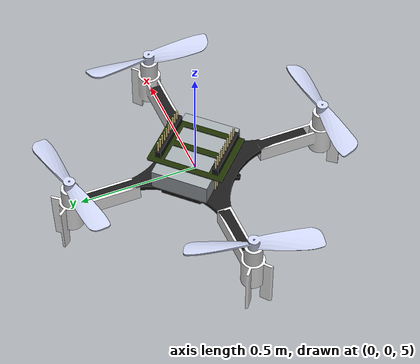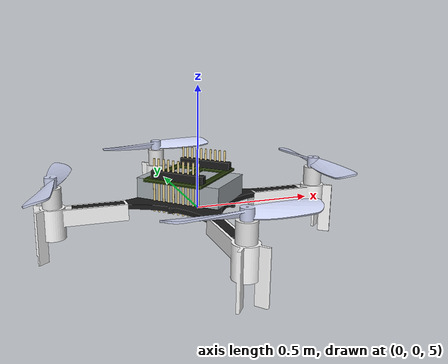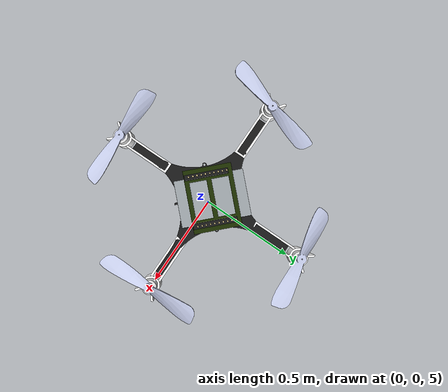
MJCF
<mujoco model="cf2">
  <option integrator="RK4" density="1.225" viscosity="1.8e-5" timestep="0.01"/>

  <compiler inertiafromgeom="false" meshdir="assets" autolimits="true"/>

  <default>
    <default class="cf2">
      <default class="visual">
        <geom group="2" type="mesh" contype="0" conaffinity="0"/>
      </default>
      <default class="collision">
        <geom group="3" type="mesh"/>
      </default>
      <site group="5"/>
    </default>
  </default>

  <asset>
    <material name="polished_plastic" rgba="0.631 0.659 0.678 1"/>
    <material name="polished_gold" rgba="0.969 0.878 0.6 1"/>
    <material name="medium_gloss_plastic" rgba="0.109 0.184 0.0 1"/>
    <material name="propeller_plastic" rgba="0.792 0.820 0.933 1"/>
    <material name="white" rgba="1 1 1 1"/>
    <material name="body_frame_plastic" rgba="0.102 0.102 0.102 1"/>
    <material name="burnished_chrome" rgba="0.898 0.898 0.898 1"/>

    <mesh file="cf2_0.obj"/>
    <mesh file="cf2_1.obj"/>
    <mesh file="cf2_2.obj"/>
    <mesh file="cf2_3.obj"/>
    <mesh file="cf2_4.obj"/>
    <mesh file="cf2_5.obj"/>
    <mesh file="cf2_6.obj"/>
    <mesh file="cf2_collision_0.obj"/>
    <mesh file="cf2_collision_1.obj"/>
    <mesh file="cf2_collision_2.obj"/>
    <mesh file="cf2_collision_3.obj"/>
    <mesh file="cf2_collision_4.obj"/>
    <mesh file="cf2_collision_5.obj"/>
    <mesh file="cf2_collision_6.obj"/>
    <mesh file="cf2_collision_7.obj"/>
    <mesh file="cf2_collision_8.obj"/>
    <mesh file="cf2_collision_9.obj"/>
    <mesh file="cf2_collision_10.obj"/>
    <mesh file="cf2_collision_11.obj"/>
    <mesh file="cf2_collision_12.obj"/>
    <mesh file="cf2_collision_13.obj"/>
    <mesh file="cf2_collision_14.obj"/>
    <mesh file="cf2_collision_15.obj"/>
    <mesh file="cf2_collision_16.obj"/>
    <mesh file="cf2_collision_17.obj"/>
    <mesh file="cf2_collision_18.obj"/>
    <mesh file="cf2_collision_19.obj"/>
    <mesh file="cf2_collision_20.obj"/>
    <mesh file="cf2_collision_21.obj"/>
    <mesh file="cf2_collision_22.obj"/>
    <mesh file="cf2_collision_23.obj"/>
    <mesh file="cf2_collision_24.obj"/>
    <mesh file="cf2_collision_25.obj"/>
    <mesh file="cf2_collision_26.obj"/>
    <mesh file="cf2_collision_27.obj"/>
    <mesh file="cf2_collision_28.obj"/>
    <mesh file="cf2_collision_29.obj"/>
    <mesh file="cf2_collision_30.obj"/>
    <mesh file="cf2_collision_31.obj"/>
  </asset>

  <worldbody>
    <body name="cf2" pos="0 0.0 5.0" childclass="cf2">
      <freejoint/>
      <inertial pos="0 0 0" mass="0.1" diaginertia="1e-2 1e-2 1e-2"/>
      <camera name="track_cf2" pos="-10  0 1" fovy="60" xyaxes="0 -1 0 0 0 1" mode="trackcom"/>
      <geom mesh="cf2_0" material="propeller_plastic" class="visual"/>
      <geom mesh="cf2_1" material="medium_gloss_plastic" class="visual"/>
      <geom mesh="cf2_2" material="polished_gold" class="visual"/>
      <geom mesh="cf2_3" material="polished_plastic" class="visual"/>
      <geom mesh="cf2_4" material="burnished_chrome" class="visual"/>
      <geom mesh="cf2_5" material="body_frame_plastic" class="visual"/>
      <geom mesh="cf2_6" material="white" class="visual"/>
      <geom mesh="cf2_collision_0" class="collision"/>
      <geom mesh="cf2_collision_1" class="collision"/>
      <geom mesh="cf2_collision_2" class="collision"/>
      <geom mesh="cf2_collision_3" class="collision"/>
      <geom mesh="cf2_collision_4" class="collision"/>
      <geom mesh="cf2_collision_5" class="collision"/>
      <geom mesh="cf2_collision_6" class="collision"/>
      <geom mesh="cf2_collision_7" class="collision"/>
      <geom mesh="cf2_collision_8" class="collision"/>
      <geom mesh="cf2_collision_9" class="collision"/>
      <geom mesh="cf2_collision_10" class="collision"/>
      <geom mesh="cf2_collision_11" class="collision"/>
      <geom mesh="cf2_collision_12" class="collision"/>
      <geom mesh="cf2_collision_13" class="collision"/>
      <geom mesh="cf2_collision_14" class="collision"/>
      <geom mesh="cf2_collision_15" class="collision"/>
      <geom mesh="cf2_collision_16" class="collision"/>
      <geom mesh="cf2_collision_17" class="collision"/>
      <geom mesh="cf2_collision_18" class="collision"/>
      <geom mesh="cf2_collision_19" class="collision"/>
      <geom mesh="cf2_collision_20" class="collision"/>
      <geom mesh="cf2_collision_21" class="collision"/>
      <geom mesh="cf2_collision_22" class="collision"/>
      <geom mesh="cf2_collision_23" class="collision"/>
      <geom mesh="cf2_collision_24" class="collision"/>
      <geom mesh="cf2_collision_25" class="collision"/>
      <geom mesh="cf2_collision_26" class="collision"/>
      <geom mesh="cf2_collision_27" class="collision"/>
      <geom mesh="cf2_collision_28" class="collision"/>
      <geom mesh="cf2_collision_29" class="collision"/>
      <geom mesh="cf2_collision_30" class="collision"/>
      <geom mesh="cf2_collision_31" class="collision"/>
      <site name="imu"/>
      <site name="actuation"/>
    </body>
  </worldbody>

  <actuator>
    <motor class="cf2" gear="0 0 1 0 0 0" site="actuation" name="body_thrust"/>
    <motor class="cf2" gear="0 0 0 1 0 0" site="actuation" name="x_moment"/>
    <motor class="cf2" gear="0 0 0 0 1 0" site="actuation" name="y_moment"/>
    <motor class="cf2" gear="0 0 0 0 0 1" site="actuation" name="z_moment"/>
  </actuator>

  <sensor>
    <gyro name="body_gyro" site="imu"/>
    <accelerometer name="body_linacc" site="imu"/>
    <framequat name="body_quat" objtype="site" objname="imu"/>
  </sensor>

  <keyframe>
    <key name="hover" qpos="0 0 0.1 1 0 0 0" ctrl="0.26487 0 0 0"/>
  </keyframe>
</mujoco>
